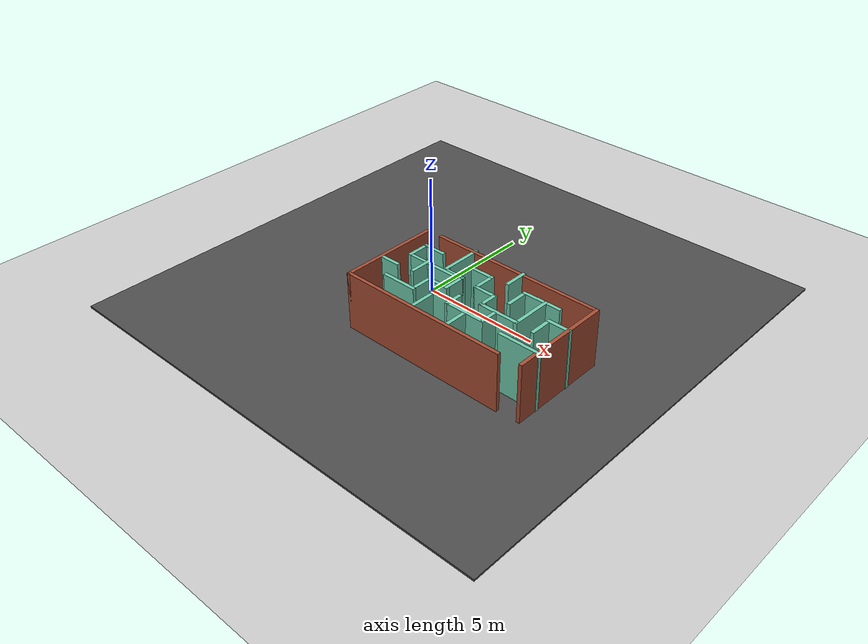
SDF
<sdf version="1.7">
 <world name="default">
  <light name="sun" type="directional">
   <pose>0 0 10 0 -0 0</pose>
   <diffuse>0.8 0.8 0.8 1</diffuse>
   <specular>0.2 0.2 0.2 1</specular>
   <attenuation>
    <range>1000</range>
    <constant>0.9</constant>
    <linear>0.01</linear>
    <quadratic>0.001</quadratic>
   </attenuation>
   <direction>-0.5 0.1 -0.9</direction>
   <spot><inner_angle>0</inner_angle><outer_angle>0</outer_angle><falloff>0</falloff></spot>
  </light>
  <model name="ground_plane">
   <static>1</static>
   <link name="link">
    <collision name="collision">
     <geometry><plane><normal>0 0 1</normal><size>100 100</size></plane></geometry>
     <surface><friction><ode><mu>100</mu><mu2>50</mu2></ode></friction></surface>
    </collision>
    <visual name="visual">
     <cast_shadows>0</cast_shadows>
     <geometry><plane><normal>0 0 1</normal><size>100 100</size></plane></geometry>
     <material>
      <script><uri>file://media/materials/scripts/gazebo.material</uri><name>Gazebo/Grey</name></script>
     </material>
    </visual>
   </link>
  </model>
  <gravity>0 0 -9.8</gravity>
  <magnetic_field>6e-06 2.3e-05 -4.2e-05</magnetic_field>
  <atmosphere type="adiabatic"/>
  <physics type="ode">
   <max_step_size>0.001</max_step_size>
   <real_time_factor>1</real_time_factor>
   <real_time_update_rate>1000</real_time_update_rate>
  </physics>
  <scene><ambient>0.4 0.4 0.4 1</ambient><background>0.7 0.7 0.7 1</background><shadows>1</shadows></scene>
  <audio><device>default</device></audio>
  <spherical_coordinates>
   <surface_model>EARTH_WGS84</surface_model>
   <latitude_deg>0</latitude_deg>
   <longitude_deg>0</longitude_deg>
   <elevation>0</elevation>
   <heading_deg>0</heading_deg>
  </spherical_coordinates>
  <model name="rom_maze_3.world">
   <pose>3.57117 -1.751 0 0 -0 0</pose>
   <link name="Wall_0">
    <collision name="Wall_0_Collision">
     <geometry><box><size>4.25 0.15 2.5</size></box></geometry>
     <pose>0 0 1.25 0 -0 0</pose>
    </collision>
    <visual name="Wall_0_Visual">
     <pose>0 0 1.25 0 -0 0</pose>
     <geometry><box><size>4.25 0.15 2.5</size></box></geometry>
     <material>
      <script><uri>file://media/materials/scripts/gazebo.material</uri><name>Gazebo/Bricks</name></script>
      <ambient>1 1 1 1</ambient>
     </material>
     <meta><layer>0</layer></meta>
    </visual>
    <pose>-4.035 -0.075 0 0 -0 -1.5708</pose>
   </link>
   <link name="Wall_1">
    <collision name="Wall_1_Collision">
     <geometry><box><size>7.25 0.15 2.5</size></box></geometry>
     <pose>0 0 1.25 0 -0 0</pose>
    </collision>
    <visual name="Wall_1_Visual">
     <pose>0 0 1.25 0 -0 0</pose>
     <geometry><box><size>7.25 0.15 2.5</size></box></geometry>
     <material>
      <script><uri>file://media/materials/scripts/gazebo.material</uri><name>Gazebo/Bricks</name></script>
      <ambient>1 1 1 1</ambient>
     </material>
     <meta><layer>0</layer></meta>
    </visual>
    <pose>-0.485 -2.125 0 0 -0 0</pose>
   </link>
   <link name="Wall_10">
    <collision name="Wall_10_Collision">
     <geometry><box><size>1.75 0.15 2.5</size></box></geometry>
     <pose>0 0 1.25 0 -0 0</pose>
    </collision>
    <visual name="Wall_10_Visual">
     <pose>0 0 1.25 0 -0 0</pose>
     <geometry><box><size>1.75 0.15 2.5</size></box></geometry>
     <material>
      <script><uri>file://media/materials/scripts/gazebo.material</uri><name>Gazebo/Grey</name></script>
      <ambient>0.435294 0.796078 0.67451 1</ambient>
     </material>
     <meta><layer>0</layer></meta>
    </visual>
    <pose>3.255 -1.235 0 0 -0 3.14159</pose>
   </link>
   <link name="Wall_12">
    <collision name="Wall_12_Collision">
     <geometry><box><size>1 0.15 2.5</size></box></geometry>
     <pose>0 0 1.25 0 -0 0</pose>
    </collision>
    <visual name="Wall_12_Visual">
     <pose>0 0 1.25 0 -0 0</pose>
     <geometry><box><size>1 0.15 2.5</size></box></geometry>
     <material>
      <script><uri>file://media/materials/scripts/gazebo.material</uri><name>Gazebo/Grey</name></script>
      <ambient>0.435294 0.796078 0.67451 1</ambient>
     </material>
     <meta><layer>0</layer></meta>
    </visual>
    <pose>3.63 0.435 0 0 -0 3.14159</pose>
   </link>
   <link name="Wall_13">
    <collision name="Wall_13_Collision">
     <geometry><box><size>1 0.15 2.5</size></box></geometry>
     <pose>0 0 1.25 0 -0 0</pose>
    </collision>
    <visual name="Wall_13_Visual">
     <pose>0 0 1.25 0 -0 0</pose>
     <geometry><box><size>1 0.15 2.5</size></box></geometry>
     <material>
      <script><uri>file://media/materials/scripts/gazebo.material</uri><name>Gazebo/Grey</name></script>
      <ambient>0.435294 0.796078 0.67451 1</ambient>
     </material>
     <meta><layer>0</layer></meta>
    </visual>
    <pose>3.205 0.01 0 0 -0 -1.5708</pose>
   </link>
   <link name="Wall_15">
    <collision name="Wall_15_Collision">
     <geometry><box><size>1 0.15 2.5</size></box></geometry>
     <pose>0 0 1.25 0 -0 0</pose>
    </collision>
    <visual name="Wall_15_Visual">
     <pose>0 0 1.25 0 -0 0</pose>
     <geometry><box><size>1 0.15 2.5</size></box></geometry>
     <material>
      <script><uri>file://media/materials/scripts/gazebo.material</uri><name>Gazebo/Grey</name></script>
      <ambient>0.435294 0.796078 0.67451 1</ambient>
     </material>
     <meta><layer>0</layer></meta>
    </visual>
    <pose>0.695 1.68 0 0 -0 -1.5708</pose>
   </link>
   <link name="Wall_17">
    <collision name="Wall_17_Collision">
     <geometry><box><size>1.75 0.15 2.5</size></box></geometry>
     <pose>0 0 1.25 0 -0 0</pose>
    </collision>
    <visual name="Wall_17_Visual">
     <pose>0 0 1.25 0 -0 0</pose>
     <geometry><box><size>1.75 0.15 2.5</size></box></geometry>
     <material>
      <script><uri>file://media/materials/scripts/gazebo.material</uri><name>Gazebo/Grey</name></script>
      <ambient>0.435294 0.796078 0.67451 1</ambient>
     </material>
     <meta><layer>0</layer></meta>
    </visual>
    <pose>-1.635 1.325 0 0 -0 -1.5708</pose>
   </link>
   <link name="Wall_18">
    <collision name="Wall_18_Collision">
     <geometry><box><size>0.25 0.15 2.5</size></box></geometry>
     <pose>0 0 1.25 0 -0 0</pose>
    </collision>
    <visual name="Wall_18_Visual">
     <pose>0 0 1.25 0 -0 0</pose>
     <geometry><box><size>0.25 0.15 2.5</size></box></geometry>
     <material>
      <script><uri>file://media/materials/scripts/gazebo.material</uri><name>Gazebo/Grey</name></script>
      <ambient>0.435294 0.796078 0.67451 1</ambient>
     </material>
     <meta><layer>0</layer></meta>
    </visual>
    <pose>-1.635 0.475 0 0 -0 -1.5708</pose>
   </link>
   <link name="Wall_19">
    <collision name="Wall_19_Collision">
     <geometry><box><size>1 0.15 2.5</size></box></geometry>
     <pose>0 0 1.25 0 -0 0</pose>
    </collision>
    <visual name="Wall_19_Visual">
     <pose>0 0 1.25 0 -0 0</pose>
     <geometry><box><size>1 0.15 2.5</size></box></geometry>
     <material>
      <script><uri>file://media/materials/scripts/gazebo.material</uri><name>Gazebo/Grey</name></script>
      <ambient>0.435294 0.796078 0.67451 1</ambient>
     </material>
     <meta><layer>0</layer></meta>
    </visual>
    <pose>-1.21 0.425 0 0 -0 0</pose>
   </link>
   <link name="Wall_20">
    <collision name="Wall_20_Collision">
     <geometry><box><size>1 0.15 2.5</size></box></geometry>
     <pose>0 0 1.25 0 -0 0</pose>
    </collision>
    <visual name="Wall_20_Visual">
     <pose>0 0 1.25 0 -0 0</pose>
     <geometry><box><size>1 0.15 2.5</size></box></geometry>
     <material>
      <script><uri>file://media/materials/scripts/gazebo.material</uri><name>Gazebo/Grey</name></script>
      <ambient>0.435294 0.796078 0.67451 1</ambient>
     </material>
     <meta><layer>0</layer></meta>
    </visual>
    <pose>-0.785 0 0 0 -0 -1.5708</pose>
   </link>
   <link name="Wall_21">
    <collision name="Wall_21_Collision">
     <geometry><box><size>1 0.15 2.5</size></box></geometry>
     <pose>0 0 1.25 0 -0 0</pose>
    </collision>
    <visual name="Wall_21_Visual">
     <pose>0 0 1.25 0 -0 0</pose>
     <geometry><box><size>1 0.15 2.5</size></box></geometry>
     <material>
      <script><uri>file://media/materials/scripts/gazebo.material</uri><name>Gazebo/Grey</name></script>
      <ambient>0.435294 0.796078 0.67451 1</ambient>
     </material>
     <meta><layer>0</layer></meta>
    </visual>
    <pose>-1.21 -0.425 0 0 -0 3.14159</pose>
   </link>
   <link name="Wall_22">
    <collision name="Wall_22_Collision">
     <geometry><box><size>1 0.15 2.5</size></box></geometry>
     <pose>0 0 1.25 0 -0 0</pose>
    </collision>
    <visual name="Wall_22_Visual">
     <pose>0 0 1.25 0 -0 0</pose>
     <geometry><box><size>1 0.15 2.5</size></box></geometry>
     <material>
      <script><uri>file://media/materials/scripts/gazebo.material</uri><name>Gazebo/Grey</name></script>
      <ambient>0.435294 0.796078 0.67451 1</ambient>
     </material>
     <meta><layer>0</layer></meta>
    </visual>
    <pose>-1.635 -0.85 0 0 -0 -1.5708</pose>
   </link>
   <link name="Wall_23">
    <collision name="Wall_23_Collision">
     <geometry><box><size>1.5 0.15 2.5</size></box></geometry>
     <pose>0 0 1.25 0 -0 0</pose>
    </collision>
    <visual name="Wall_23_Visual">
     <pose>0 0 1.25 0 -0 0</pose>
     <geometry><box><size>1.5 0.15 2.5</size></box></geometry>
     <material>
      <script><uri>file://media/materials/scripts/gazebo.material</uri><name>Gazebo/Grey</name></script>
      <ambient>0.435294 0.796078 0.67451 1</ambient>
     </material>
     <meta><layer>0</layer></meta>
    </visual>
    <pose>-2.31 -1.275 0 0 -0 3.14159</pose>
   </link>
   <link name="Wall_25">
    <collision name="Wall_25_Collision">
     <geometry><box><size>1 0.15 2.5</size></box></geometry>
     <pose>0 0 1.25 0 -0 0</pose>
    </collision>
    <visual name="Wall_25_Visual">
     <pose>0 0 1.25 0 -0 0</pose>
     <geometry><box><size>1 0.15 2.5</size></box></geometry>
     <material>
      <script><uri>file://media/materials/scripts/gazebo.material</uri><name>Gazebo/Grey</name></script>
      <ambient>0.435294 0.796078 0.67451 1</ambient>
     </material>
     <meta><layer>0</layer></meta>
    </visual>
    <pose>-2.88 1.175 0 0 -0 3.14159</pose>
   </link>
   <link name="Wall_26">
    <collision name="Wall_26_Collision">
     <geometry><box><size>1 0.15 2.5</size></box></geometry>
     <pose>0 0 1.25 0 -0 0</pose>
    </collision>
    <visual name="Wall_26_Visual">
     <pose>0 0 1.25 0 -0 0</pose>
     <geometry><box><size>1 0.15 2.5</size></box></geometry>
     <material>
      <script><uri>file://media/materials/scripts/gazebo.material</uri><name>Gazebo/Grey</name></script>
      <ambient>0.435294 0.796078 0.67451 1</ambient>
     </material>
     <meta><layer>0</layer></meta>
    </visual>
    <pose>-3.305 0.75 0 0 -0 -1.5708</pose>
   </link>
   <link name="Wall_27">
    <collision name="Wall_27_Collision">
     <geometry><box><size>2.25 0.15 2.5</size></box></geometry>
     <pose>0 0 1.25 0 -0 0</pose>
    </collision>
    <visual name="Wall_27_Visual">
     <pose>0 0 1.25 0 -0 0</pose>
     <geometry><box><size>2.25 0.15 2.5</size></box></geometry>
     <material>
      <script><uri>file://media/materials/scripts/gazebo.material</uri><name>Gazebo/Grey</name></script>
      <ambient>0.435294 0.796078 0.67451 1</ambient>
     </material>
     <meta><layer>0</layer></meta>
    </visual>
    <pose>-2.255 0.325 0 0 -0 0</pose>
   </link>
   <link name="Wall_29">
    <collision name="Wall_29_Collision">
     <geometry><box><size>1 0.15 2.5</size></box></geometry>
     <pose>0 0 1.25 0 -0 0</pose>
    </collision>
    <visual name="Wall_29_Visual">
     <pose>0 0 1.25 0 -0 0</pose>
     <geometry><box><size>1 0.15 2.5</size></box></geometry>
     <material>
      <script><uri>file://media/materials/scripts/gazebo.material</uri><name>Gazebo/Grey</name></script>
      <ambient>0.435294 0.796078 0.67451 1</ambient>
     </material>
     <meta><layer>0</layer></meta>
    </visual>
    <pose>-2.455 0.01 0 0 -0 1.5708</pose>
   </link>
   <link name="Wall_3">
    <collision name="Wall_3_Collision">
     <geometry><box><size>7.5 0.15 2.5</size></box></geometry>
     <pose>0 0 1.25 0 -0 0</pose>
    </collision>
    <visual name="Wall_3_Visual">
     <pose>0 0 1.25 0 -0 0</pose>
     <geometry><box><size>7.5 0.15 2.5</size></box></geometry>
     <material>
      <script><uri>file://media/materials/scripts/gazebo.material</uri><name>Gazebo/Bricks</name></script>
      <ambient>1 1 1 1</ambient>
     </material>
     <meta><layer>0</layer></meta>
    </visual>
    <pose>0.36 2.045 0 0 -0 0</pose>
   </link>
   <link name="Wall_31">
    <collision name="Wall_31_Collision">
     <geometry><box><size>1 0.15 2.5</size></box></geometry>
     <pose>0 0 1.25 0 -0 0</pose>
    </collision>
    <visual name="Wall_31_Visual">
     <pose>0 0 1.25 0 -0 0</pose>
     <geometry><box><size>1 0.15 2.5</size></box></geometry>
     <material>
      <script><uri>file://media/materials/scripts/gazebo.material</uri><name>Gazebo/Grey</name></script>
      <ambient>0.435294 0.796078 0.67451 1</ambient>
     </material>
     <meta><layer>0</layer></meta>
    </visual>
    <pose>-0.44 1.165 0 0 -0 0</pose>
   </link>
   <link name="Wall_32">
    <collision name="Wall_32_Collision">
     <geometry><box><size>1 0.15 2.5</size></box></geometry>
     <pose>0 0 1.25 0 -0 0</pose>
    </collision>
    <visual name="Wall_32_Visual">
     <pose>0 0 1.25 0 -0 0</pose>
     <geometry><box><size>1 0.15 2.5</size></box></geometry>
     <material>
      <script><uri>file://media/materials/scripts/gazebo.material</uri><name>Gazebo/Grey</name></script>
      <ambient>0.435294 0.796078 0.67451 1</ambient>
     </material>
     <meta><layer>0</layer></meta>
    </visual>
    <pose>-0.015 0.74 0 0 -0 -1.5708</pose>
   </link>
   <link name="Wall_33">
    <collision name="Wall_33_Collision">
     <geometry><box><size>1 0.15 2.5</size></box></geometry>
     <pose>0 0 1.25 0 -0 0</pose>
    </collision>
    <visual name="Wall_33_Visual">
     <pose>0 0 1.25 0 -0 0</pose>
     <geometry><box><size>1 0.15 2.5</size></box></geometry>
     <material>
      <script><uri>file://media/materials/scripts/gazebo.material</uri><name>Gazebo/Grey</name></script>
      <ambient>0.435294 0.796078 0.67451 1</ambient>
     </material>
     <meta><layer>0</layer></meta>
    </visual>
    <pose>0.41 0.315 0 0 -0 0</pose>
   </link>
   <link name="Wall_34">
    <collision name="Wall_34_Collision">
     <geometry><box><size>0.75 0.15 2.5</size></box></geometry>
     <pose>0 0 1.25 0 -0 0</pose>
    </collision>
    <visual name="Wall_34_Visual">
     <pose>0 0 1.25 0 -0 0</pose>
     <geometry><box><size>0.75 0.15 2.5</size></box></geometry>
     <material>
      <script><uri>file://media/materials/scripts/gazebo.material</uri><name>Gazebo/Grey</name></script>
      <ambient>0.435294 0.796078 0.67451 1</ambient>
     </material>
     <meta><layer>0</layer></meta>
    </visual>
    <pose>0.835 0.015 0 0 -0 -1.5708</pose>
   </link>
   <link name="Wall_35">
    <collision name="Wall_35_Collision">
     <geometry><box><size>0.25 0.15 2.5</size></box></geometry>
     <pose>0 0 1.25 0 -0 0</pose>
    </collision>
    <visual name="Wall_35_Visual">
     <pose>0 0 1.25 0 -0 0</pose>
     <geometry><box><size>0.25 0.15 2.5</size></box></geometry>
     <material>
      <script><uri>file://media/materials/scripts/gazebo.material</uri><name>Gazebo/Grey</name></script>
      <ambient>0.435294 0.796078 0.67451 1</ambient>
     </material>
     <meta><layer>0</layer></meta>
    </visual>
    <pose>0.835 -0.335 0 0 -0 -1.5708</pose>
   </link>
   <link name="Wall_36">
    <collision name="Wall_36_Collision">
     <geometry><box><size>1.75 0.15 2.5</size></box></geometry>
     <pose>0 0 1.25 0 -0 0</pose>
    </collision>
    <visual name="Wall_36_Visual">
     <pose>0 0 1.25 0 -0 0</pose>
     <geometry><box><size>1.75 0.15 2.5</size></box></geometry>
     <material>
      <script><uri>file://media/materials/scripts/gazebo.material</uri><name>Gazebo/Grey</name></script>
      <ambient>0.435294 0.796078 0.67451 1</ambient>
     </material>
     <meta><layer>0</layer></meta>
    </visual>
    <pose>1.635 -0.385 0 0 -0 0</pose>
   </link>
   <link name="Wall_37">
    <collision name="Wall_37_Collision">
     <geometry><box><size>1.75 0.15 2.5</size></box></geometry>
     <pose>0 0 1.25 0 -0 0</pose>
    </collision>
    <visual name="Wall_37_Visual">
     <pose>0 0 1.25 0 -0 0</pose>
     <geometry><box><size>1.75 0.15 2.5</size></box></geometry>
     <material>
      <script><uri>file://media/materials/scripts/gazebo.material</uri><name>Gazebo/Grey</name></script>
      <ambient>0.435294 0.796078 0.67451 1</ambient>
     </material>
     <meta><layer>0</layer></meta>
    </visual>
    <pose>2.435 0.415 0 0 -0 1.5708</pose>
   </link>
   <link name="Wall_38">
    <collision name="Wall_38_Collision">
     <geometry><box><size>0.75 0.15 2.5</size></box></geometry>
     <pose>0 0 1.25 0 -0 0</pose>
    </collision>
    <visual name="Wall_38_Visual">
     <pose>0 0 1.25 0 -0 0</pose>
     <geometry><box><size>0.75 0.15 2.5</size></box></geometry>
     <material>
      <script><uri>file://media/materials/scripts/gazebo.material</uri><name>Gazebo/Grey</name></script>
      <ambient>0.435294 0.796078 0.67451 1</ambient>
     </material>
     <meta><layer>0</layer></meta>
    </visual>
    <pose>2.735 1.215 0 0 -0 0</pose>
   </link>
   <link name="Wall_4">
    <collision name="Wall_4_Collision">
     <geometry><box><size>4.25 0.15 2.5</size></box></geometry>
     <pose>0 0 1.25 0 -0 0</pose>
    </collision>
    <visual name="Wall_4_Visual">
     <pose>0 0 1.25 0 -0 0</pose>
     <geometry><box><size>4.25 0.15 2.5</size></box></geometry>
     <material>
      <script><uri>file://media/materials/scripts/gazebo.material</uri><name>Gazebo/Bricks</name></script>
      <ambient>1 1 1 1</ambient>
     </material>
     <meta><layer>0</layer></meta>
    </visual>
    <pose>4.035 -0.005 0 0 -0 -1.5708</pose>
   </link>
   <link name="Wall_40">
    <collision name="Wall_40_Collision">
     <geometry><box><size>1 0.15 2.5</size></box></geometry>
     <pose>0 0 1.25 0 -0 0</pose>
    </collision>
    <visual name="Wall_40_Visual">
     <pose>0 0 1.25 0 -0 0</pose>
     <geometry><box><size>1 0.15 2.5</size></box></geometry>
     <material>
      <script><uri>file://media/materials/scripts/gazebo.material</uri><name>Gazebo/Grey</name></script>
      <ambient>0.435294 0.796078 0.67451 1</ambient>
     </material>
     <meta><layer>0</layer></meta>
    </visual>
    <pose>1.525 0.77 0 0 -0 1.5708</pose>
   </link>
   <link name="Wall_41">
    <collision name="Wall_41_Collision">
     <geometry><box><size>1.06022 0.15 2.5</size></box></geometry>
     <pose>0 0 1.25 0 -0 0</pose>
    </collision>
    <visual name="Wall_41_Visual">
     <pose>0 0 1.25 0 -0 0</pose>
     <geometry><box><size>1.06022 0.15 2.5</size></box></geometry>
     <material>
      <script><uri>file://media/materials/scripts/gazebo.material</uri><name>Gazebo/Grey</name></script>
      <ambient>0.435294 0.796078 0.67451 1</ambient>
     </material>
     <meta><layer>0</layer></meta>
    </visual>
    <pose>1.98 1.205 0 0 -0 0.021974</pose>
   </link>
   <link name="Wall_43">
    <collision name="Wall_43_Collision">
     <geometry><box><size>0.75 0.15 2.5</size></box></geometry>
     <pose>0 0 1.25 0 -0 0</pose>
    </collision>
    <visual name="Wall_43_Visual">
     <pose>0 0 1.25 0 -0 0</pose>
     <geometry><box><size>0.75 0.15 2.5</size></box></geometry>
     <material>
      <script><uri>file://media/materials/scripts/gazebo.material</uri><name>Gazebo/Grey</name></script>
      <ambient>0.435294 0.796078 0.67451 1</ambient>
     </material>
     <meta><layer>0</layer></meta>
    </visual>
    <pose>-0.085 -0.815 0 0 -0 -1.5708</pose>
   </link>
   <link name="Wall_44">
    <collision name="Wall_44_Collision">
     <geometry><box><size>1.75 0.15 2.5</size></box></geometry>
     <pose>0 0 1.25 0 -0 0</pose>
    </collision>
    <visual name="Wall_44_Visual">
     <pose>0 0 1.25 0 -0 0</pose>
     <geometry><box><size>1.75 0.15 2.5</size></box></geometry>
     <material>
      <script><uri>file://media/materials/scripts/gazebo.material</uri><name>Gazebo/Grey</name></script>
      <ambient>0.435294 0.796078 0.67451 1</ambient>
     </material>
     <meta><layer>0</layer></meta>
    </visual>
    <pose>0.715 -1.115 0 0 -0 0</pose>
   </link>
   <link name="Wall_45">
    <collision name="Wall_45_Collision">
     <geometry><box><size>0.75 0.15 2.5</size></box></geometry>
     <pose>0 0 1.25 0 -0 0</pose>
    </collision>
    <visual name="Wall_45_Visual">
     <pose>0 0 1.25 0 -0 0</pose>
     <geometry><box><size>0.75 0.15 2.5</size></box></geometry>
     <material>
      <script><uri>file://media/materials/scripts/gazebo.material</uri><name>Gazebo/Grey</name></script>
      <ambient>0.435294 0.796078 0.67451 1</ambient>
     </material>
     <meta><layer>0</layer></meta>
    </visual>
    <pose>1.515 -0.815 0 0 -0 1.5708</pose>
   </link>
   <link name="Wall_47">
    <collision name="Wall_47_Collision">
     <geometry><box><size>1 0.15 2.5</size></box></geometry>
     <pose>0 0 1.25 0 -0 0</pose>
    </collision>
    <visual name="Wall_47_Visual">
     <pose>0 0 1.25 0 -0 0</pose>
     <geometry><box><size>1 0.15 2.5</size></box></geometry>
     <material>
      <script><uri>file://media/materials/scripts/gazebo.material</uri><name>Gazebo/Grey</name></script>
      <ambient>0.435294 0.796078 0.67451 1</ambient>
     </material>
     <meta><layer>0</layer></meta>
    </visual>
    <pose>0.745 -1.59 0 0 -0 1.5708</pose>
   </link>
   <link name="Wall_6">
    <collision name="Wall_6_Collision">
     <geometry><box><size>1 0.15 2.5</size></box></geometry>
     <pose>0 0 1.25 0 -0 0</pose>
    </collision>
    <visual name="Wall_6_Visual">
     <pose>0 0 1.25 0 -0 0</pose>
     <geometry><box><size>1 0.15 2.5</size></box></geometry>
     <material>
      <script><uri>file://media/materials/scripts/gazebo.material</uri><name>Gazebo/Grey</name></script>
      <ambient>0.435294 0.796078 0.67451 1</ambient>
     </material>
     <meta><layer>0</layer></meta>
    </visual>
    <pose>-3.63 -0.495 0 0 -0 0</pose>
   </link>
   <link name="Wall_8">
    <collision name="Wall_8_Collision">
     <geometry><box><size>1 0.15 2.5</size></box></geometry>
     <pose>0 0 1.25 0 -0 0</pose>
    </collision>
    <visual name="Wall_8_Visual">
     <pose>0 0 1.25 0 -0 0</pose>
     <geometry><box><size>1 0.15 2.5</size></box></geometry>
     <material>
      <script><uri>file://media/materials/scripts/gazebo.material</uri><name>Gazebo/Grey</name></script>
      <ambient>0.435294 0.796078 0.67451 1</ambient>
     </material>
     <meta><layer>0</layer></meta>
    </visual>
    <pose>-0.895 -1.58 0 0 -0 1.5708</pose>
   </link>
   <static>1</static>
  </model>
  <model name="asphalt_plane">
   <static>1</static>
   <link name="link">
    <collision name="collision">
     <geometry><box><size>20 20 0.1</size></box></geometry>
     <surface><friction><ode><mu>0.5</mu><mu2>0.3</mu2></ode></friction></surface>
    </collision>
    <visual name="visual">
     <cast_shadows>0</cast_shadows>
     <geometry><box><size>20 20 0.1</size></box></geometry>
     <material>
      <script>
       <uri>model://asphalt_plane/materials/scripts</uri>
       <uri>model://asphalt_plane/materials/textures</uri>
       <name>vrc/asphalt</name>
      </script>
     </material>
    </visual>
   </link>
   <pose>0.959227 0.142007 0 0 -0 0</pose>
  </model>
 </world>
</sdf>
